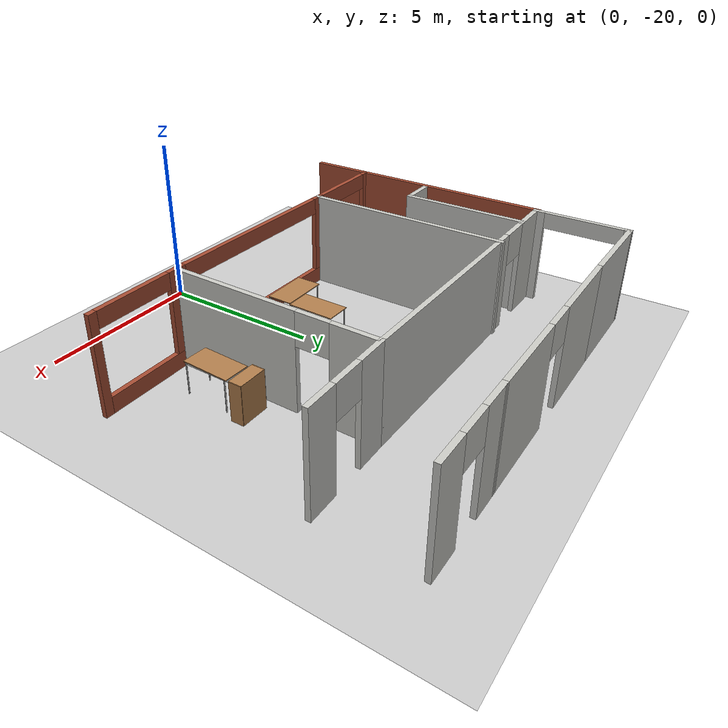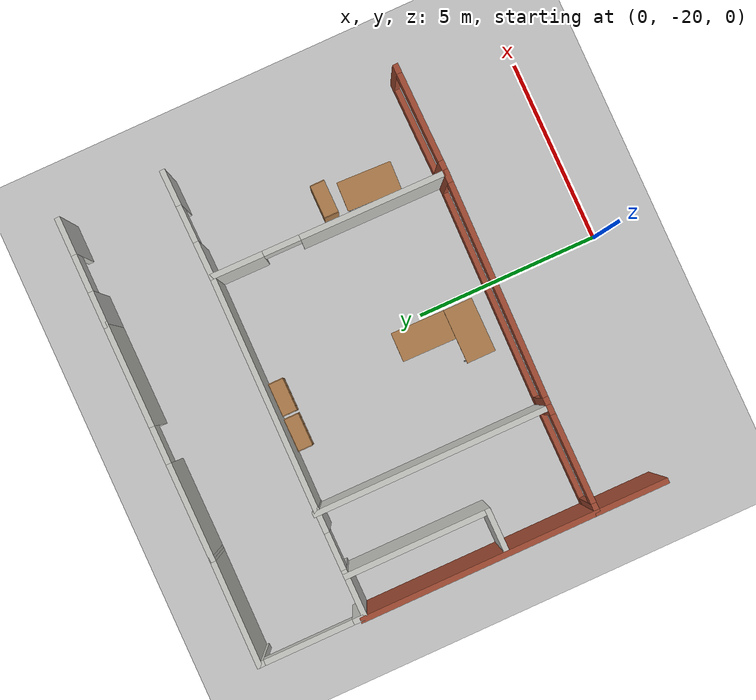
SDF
<sdf version="1.7">
 <world name="default">
  <model name="ground_plane">
   <static>1</static>
   <link name="link">
    <collision name="collision">
     <geometry><plane><normal>0 0 1</normal><size>100 100</size></plane></geometry>
     <surface><friction><ode><mu>100</mu><mu2>50</mu2></ode></friction></surface>
    </collision>
    <visual name="visual">
     <cast_shadows>0</cast_shadows>
     <geometry><plane><normal>0 0 1</normal><size>100 100</size></plane></geometry>
     <material>
      <script><uri>file://media/materials/scripts/gazebo.material</uri><name>Gazebo/Grey</name></script>
     </material>
    </visual>
   </link>
  </model>
  <model name="laboratory_world">
   <pose>0.94037 -7.07852 0 0 -0 0</pose>
   <link name="Wall_10">
    <pose>3.44822 -0.5985 0 0 -0 0</pose>
    <visual name="Wall_10_Visual_0">
     <pose>-1.01282 0 1.5 0 -0 0</pose>
     <geometry><box><size>0.974364 0.15 3</size></box></geometry>
     <material>
      <script><uri>file://media/materials/scripts/gazebo.material</uri><name>Gazebo/CeilingTiled</name></script>
      <ambient>0.921569 0.807843 0.615686 1</ambient>
     </material>
     <meta><layer>0</layer></meta>
    </visual>
    <collision name="Wall_10_Collision_0">
     <geometry><box><size>0.974364 0.15 3</size></box></geometry>
     <pose>-1.01282 0 1.5 0 -0 0</pose>
    </collision>
    <visual name="Wall_10_Visual_1">
     <pose>0.987182 0 1.5 0 -0 0</pose>
     <geometry><box><size>1.02564 0.15 3</size></box></geometry>
     <material>
      <script><uri>file://media/materials/scripts/gazebo.material</uri><name>Gazebo/CeilingTiled</name></script>
      <ambient>0.921569 0.807843 0.615686 1</ambient>
     </material>
     <meta><layer>0</layer></meta>
    </visual>
    <collision name="Wall_10_Collision_1">
     <geometry><box><size>1.02564 0.15 3</size></box></geometry>
     <pose>0.987182 0 1.5 0 -0 0</pose>
    </collision>
    <visual name="Wall_10_Visual_2">
     <pose>-0.025636 0 2.5 0 -0 0</pose>
     <geometry><box><size>1 0.15 1</size></box></geometry>
     <material>
      <script><uri>file://media/materials/scripts/gazebo.material</uri><name>Gazebo/CeilingTiled</name></script>
      <ambient>0.921569 0.807843 0.615686 1</ambient>
     </material>
     <meta><layer>0</layer></meta>
    </visual>
    <collision name="Wall_10_Collision_2">
     <geometry><box><size>1 0.15 1</size></box></geometry>
     <pose>-0.025636 0 2.5 0 -0 0</pose>
    </collision>
   </link>
   <link name="Wall_100">
    <collision name="Wall_100_Collision">
     <geometry><box><size>6.5 0.15 3</size></box></geometry>
     <pose>0 0 1.5 0 -0 0</pose>
    </collision>
    <visual name="Wall_100_Visual">
     <pose>0 0 1.5 0 -0 0</pose>
     <geometry><box><size>6.5 0.15 3</size></box></geometry>
     <material>
      <script><uri>file://media/materials/scripts/gazebo.material</uri><name>Gazebo/CeilingTiled</name></script>
      <ambient>0.921569 0.807843 0.615686 1</ambient>
     </material>
     <meta><layer>0</layer></meta>
    </visual>
    <pose>-4.37378 -6.5765 0 0 -0 1.5708</pose>
   </link>
   <link name="Wall_104">
    <pose>-7.17678 -2.0295 0 0 -0 1.5708</pose>
    <visual name="Wall_104_Visual_0">
     <pose>-1.31184 0 1.5 0 -0 0</pose>
     <geometry><box><size>0.388331 0.15 3</size></box></geometry>
     <material>
      <script><uri>file://media/materials/scripts/gazebo.material</uri><name>Gazebo/CeilingTiled</name></script>
      <ambient>0.921569 0.807843 0.615686 1</ambient>
     </material>
     <meta><layer>0</layer></meta>
    </visual>
    <collision name="Wall_104_Collision_0">
     <geometry><box><size>0.388331 0.15 3</size></box></geometry>
     <pose>-1.31184 0 1.5 0 -0 0</pose>
    </collision>
    <visual name="Wall_104_Visual_1">
     <pose>1.39417 0 1.5 0 -0 0</pose>
     <geometry><box><size>0.223669 0.15 3</size></box></geometry>
     <material>
      <script><uri>file://media/materials/scripts/gazebo.material</uri><name>Gazebo/CeilingTiled</name></script>
      <ambient>0.921569 0.807843 0.615686 1</ambient>
     </material>
     <meta><layer>0</layer></meta>
    </visual>
    <collision name="Wall_104_Collision_1">
     <geometry><box><size>0.223669 0.15 3</size></box></geometry>
     <pose>1.39417 0 1.5 0 -0 0</pose>
    </collision>
    <visual name="Wall_104_Visual_2">
     <pose>0.082331 0 2.75 0 -0 0</pose>
     <geometry><box><size>2.4 0.15 0.5</size></box></geometry>
     <material>
      <script><uri>file://media/materials/scripts/gazebo.material</uri><name>Gazebo/CeilingTiled</name></script>
      <ambient>0.921569 0.807843 0.615686 1</ambient>
     </material>
     <meta><layer>0</layer></meta>
    </visual>
    <collision name="Wall_104_Collision_2">
     <geometry><box><size>2.4 0.15 0.5</size></box></geometry>
     <pose>0.082331 0 2.75 0 -0 0</pose>
    </collision>
   </link>
   <link name="Wall_106">
    <collision name="Wall_106_Collision">
     <geometry><box><size>1.2 0.15 3</size></box></geometry>
     <pose>0 0 1.5 0 -0 0</pose>
    </collision>
    <visual name="Wall_106_Visual">
     <pose>0 0 1.5 0 -0 0</pose>
     <geometry><box><size>1.2 0.15 3</size></box></geometry>
     <material>
      <script><uri>file://media/materials/scripts/gazebo.material</uri><name>Gazebo/CeilingTiled</name></script>
      <ambient>0.921569 0.807843 0.615686 1</ambient>
     </material>
     <meta><layer>0</layer></meta>
    </visual>
    <pose>-6.60478 -7.3105 0 0 -0 0</pose>
   </link>
   <link name="Wall_108">
    <collision name="Wall_108_Collision">
     <geometry><box><size>4 0.15 3</size></box></geometry>
     <pose>0 0 1.5 0 -0 0</pose>
    </collision>
    <visual name="Wall_108_Visual">
     <pose>0 0 1.5 0 -0 0</pose>
     <geometry><box><size>4 0.15 3</size></box></geometry>
     <material>
      <script><uri>file://media/materials/scripts/gazebo.material</uri><name>Gazebo/CeilingTiled</name></script>
      <ambient>0.921569 0.807843 0.615686 1</ambient>
     </material>
     <meta><layer>0</layer></meta>
    </visual>
    <pose>-6.07978 -5.3855 0 0 -0 1.5708</pose>
   </link>
   <link name="Wall_112">
    <pose>-5.79878 -9.7515 0 0 -0 3.14159</pose>
    <visual name="Wall_112_Visual_0">
     <pose>-1.36527 0 1.5 0 -0 0</pose>
     <geometry><box><size>0.269459 0.15 3</size></box></geometry>
     <material>
      <script><uri>file://media/materials/scripts/gazebo.material</uri><name>Gazebo/Bricks</name></script>
      <ambient>0.760784 0.662745 0.627451 1</ambient>
     </material>
     <meta><layer>0</layer></meta>
    </visual>
    <collision name="Wall_112_Collision_0">
     <geometry><box><size>0.269459 0.15 3</size></box></geometry>
     <pose>-1.36527 0 1.5 0 -0 0</pose>
    </collision>
    <visual name="Wall_112_Visual_1">
     <pose>0.134729 0 0.25 0 -0 0</pose>
     <geometry><box><size>2.73054 0.15 0.5</size></box></geometry>
     <material>
      <script><uri>file://media/materials/scripts/gazebo.material</uri><name>Gazebo/Bricks</name></script>
      <ambient>0.760784 0.662745 0.627451 1</ambient>
     </material>
     <meta><layer>0</layer></meta>
    </visual>
    <collision name="Wall_112_Collision_1">
     <geometry><box><size>2.73054 0.15 0.5</size></box></geometry>
     <pose>0.134729 0 0.25 0 -0 0</pose>
    </collision>
    <visual name="Wall_112_Visual_2">
     <pose>1.33473 0 1.75 0 -0 0</pose>
     <geometry><box><size>0.330541 0.15 2.5</size></box></geometry>
     <material>
      <script><uri>file://media/materials/scripts/gazebo.material</uri><name>Gazebo/Bricks</name></script>
      <ambient>0.760784 0.662745 0.627451 1</ambient>
     </material>
     <meta><layer>0</layer></meta>
    </visual>
    <collision name="Wall_112_Collision_2">
     <geometry><box><size>0.330541 0.15 2.5</size></box></geometry>
     <pose>1.33473 0 1.75 0 -0 0</pose>
    </collision>
    <visual name="Wall_112_Visual_3">
     <pose>-0.030541 0 2.75 0 -0 0</pose>
     <geometry><box><size>2.4 0.15 0.5</size></box></geometry>
     <material>
      <script><uri>file://media/materials/scripts/gazebo.material</uri><name>Gazebo/Bricks</name></script>
      <ambient>0.760784 0.662745 0.627451 1</ambient>
     </material>
     <meta><layer>0</layer></meta>
    </visual>
    <collision name="Wall_112_Collision_3">
     <geometry><box><size>2.4 0.15 0.5</size></box></geometry>
     <pose>-0.030541 0 2.75 0 -0 0</pose>
    </collision>
   </link>
   <link name="Wall_114">
    <collision name="Wall_114_Collision">
     <geometry><box><size>6.5 0.15 3</size></box></geometry>
     <pose>0 0 1.5 0 -0 0</pose>
    </collision>
    <visual name="Wall_114_Visual">
     <pose>0 0 1.5 0 -0 0</pose>
     <geometry><box><size>6.5 0.15 3</size></box></geometry>
     <material>
      <script><uri>file://media/materials/scripts/gazebo.material</uri><name>Gazebo/Bricks</name></script>
      <ambient>0.760784 0.662745 0.627451 1</ambient>
     </material>
     <meta><layer>0</layer></meta>
    </visual>
    <pose>-7.22378 -6.5765 0 0 -0 1.5708</pose>
   </link>
   <link name="Wall_118">
    <collision name="Wall_118_Collision">
     <geometry><box><size>2 0.15 3</size></box></geometry>
     <pose>0 0 1.5 0 -0 0</pose>
    </collision>
    <visual name="Wall_118_Visual">
     <pose>0 0 1.5 0 -0 0</pose>
     <geometry><box><size>2 0.15 3</size></box></geometry>
     <material>
      <script><uri>file://media/materials/scripts/gazebo.material</uri><name>Gazebo/Bricks</name></script>
      <ambient>0.760784 0.662745 0.627451 1</ambient>
     </material>
     <meta><layer>0</layer></meta>
    </visual>
    <pose>-7.22378 -10.6765 0 0 -0 -1.5708</pose>
   </link>
   <link name="Wall_38">
    <pose>3.44822 -3.4685 0 0 -0 -3.12756</pose>
    <visual name="Wall_38_Visual_0">
     <pose>-1.00981 0 1.5 0 -0 0</pose>
     <geometry><box><size>0.981532 0.15 3</size></box></geometry>
     <material>
      <script><uri>file://media/materials/scripts/gazebo.material</uri><name>Gazebo/CeilingTiled</name></script>
      <ambient>0.921569 0.807843 0.615686 1</ambient>
     </material>
     <meta><layer>0</layer></meta>
    </visual>
    <collision name="Wall_38_Collision_0">
     <geometry><box><size>0.981532 0.15 3</size></box></geometry>
     <pose>-1.00981 0 1.5 0 -0 0</pose>
    </collision>
    <visual name="Wall_38_Visual_1">
     <pose>0.990766 0 1.5 0 -0 0</pose>
     <geometry><box><size>1.01962 0.15 3</size></box></geometry>
     <material>
      <script><uri>file://media/materials/scripts/gazebo.material</uri><name>Gazebo/CeilingTiled</name></script>
      <ambient>0.921569 0.807843 0.615686 1</ambient>
     </material>
     <meta><layer>0</layer></meta>
    </visual>
    <collision name="Wall_38_Collision_1">
     <geometry><box><size>1.01962 0.15 3</size></box></geometry>
     <pose>0.990766 0 1.5 0 -0 0</pose>
    </collision>
    <visual name="Wall_38_Visual_2">
     <pose>-0.019042 0 2.5 0 -0 0</pose>
     <geometry><box><size>1 0.15 1</size></box></geometry>
     <material>
      <script><uri>file://media/materials/scripts/gazebo.material</uri><name>Gazebo/CeilingTiled</name></script>
      <ambient>0.921569 0.807843 0.615686 1</ambient>
     </material>
     <meta><layer>0</layer></meta>
    </visual>
    <collision name="Wall_38_Collision_2">
     <geometry><box><size>1 0.15 1</size></box></geometry>
     <pose>-0.019042 0 2.5 0 -0 0</pose>
    </collision>
   </link>
   <link name="Wall_4">
    <collision name="Wall_4_Collision">
     <geometry><box><size>3 0.15 3</size></box></geometry>
     <pose>0 0 1.5 0 -0 0</pose>
    </collision>
    <visual name="Wall_4_Visual">
     <pose>0 0 1.5 0 -0 0</pose>
     <geometry><box><size>3 0.15 3</size></box></geometry>
     <material>
      <script><uri>file://media/materials/scripts/gazebo.material</uri><name>Gazebo/CeilingTiled</name></script>
      <ambient>0.921569 0.807843 0.615686 1</ambient>
     </material>
     <meta><layer>0</layer></meta>
    </visual>
    <pose>-5.75178 -0.607 0 0 -0 -0.005965</pose>
   </link>
   <link name="Wall_49">
    <pose>1.99972 -6.6635 0 0 -0 -1.5782</pose>
    <visual name="Wall_49_Visual_0">
     <pose>-2.52256 0 1.5 0 -0 0</pose>
     <geometry><box><size>1.45489 0.15 3</size></box></geometry>
     <material>
      <script><uri>file://media/materials/scripts/gazebo.material</uri><name>Gazebo/CeilingTiled</name></script>
      <ambient>0.921569 0.807843 0.615686 1</ambient>
     </material>
     <meta><layer>0</layer></meta>
    </visual>
    <collision name="Wall_49_Collision_0">
     <geometry><box><size>1.45489 0.15 3</size></box></geometry>
     <pose>-2.52256 0 1.5 0 -0 0</pose>
    </collision>
    <visual name="Wall_49_Visual_1">
     <pose>1.22744 0 1.5 0 -0 0</pose>
     <geometry><box><size>4.04511 0.15 3</size></box></geometry>
     <material>
      <script><uri>file://media/materials/scripts/gazebo.material</uri><name>Gazebo/CeilingTiled</name></script>
      <ambient>0.921569 0.807843 0.615686 1</ambient>
     </material>
     <meta><layer>0</layer></meta>
    </visual>
    <collision name="Wall_49_Collision_1">
     <geometry><box><size>4.04511 0.15 3</size></box></geometry>
     <pose>1.22744 0 1.5 0 -0 0</pose>
    </collision>
    <visual name="Wall_49_Visual_2">
     <pose>-1.29511 0 2.5 0 -0 0</pose>
     <geometry><box><size>1 0.15 1</size></box></geometry>
     <material>
      <script><uri>file://media/materials/scripts/gazebo.material</uri><name>Gazebo/CeilingTiled</name></script>
      <ambient>0.921569 0.807843 0.615686 1</ambient>
     </material>
     <meta><layer>0</layer></meta>
    </visual>
    <collision name="Wall_49_Collision_2">
     <geometry><box><size>1 0.15 1</size></box></geometry>
     <pose>-1.29511 0 2.5 0 -0 0</pose>
    </collision>
   </link>
   <link name="Wall_52">
    <pose>3.42472 -9.8185 0 0 -0 -3.12779</pose>
    <visual name="Wall_52_Visual_0">
     <pose>-1.39736 0 1.5 0 -0 0</pose>
     <geometry><box><size>0.252182 0.15 3</size></box></geometry>
     <material>
      <script><uri>file://media/materials/scripts/gazebo.material</uri><name>Gazebo/Bricks</name></script>
      <ambient>0.921569 0.807843 0.615686 1</ambient>
     </material>
     <meta><layer>0</layer></meta>
    </visual>
    <collision name="Wall_52_Collision_0">
     <geometry><box><size>0.252182 0.15 3</size></box></geometry>
     <pose>-1.39736 0 1.5 0 -0 0</pose>
    </collision>
    <visual name="Wall_52_Visual_1">
     <pose>0.126091 0 0.25 0 -0 0</pose>
     <geometry><box><size>2.79472 0.15 0.5</size></box></geometry>
     <material>
      <script><uri>file://media/materials/scripts/gazebo.material</uri><name>Gazebo/Bricks</name></script>
      <ambient>0.921569 0.807843 0.615686 1</ambient>
     </material>
     <meta><layer>0</layer></meta>
    </visual>
    <collision name="Wall_52_Collision_1">
     <geometry><box><size>2.79472 0.15 0.5</size></box></geometry>
     <pose>0.126091 0 0.25 0 -0 0</pose>
    </collision>
    <visual name="Wall_52_Visual_2">
     <pose>1.32609 0 1.75 0 -0 0</pose>
     <geometry><box><size>0.394716 0.15 2.5</size></box></geometry>
     <material>
      <script><uri>file://media/materials/scripts/gazebo.material</uri><name>Gazebo/Bricks</name></script>
      <ambient>0.921569 0.807843 0.615686 1</ambient>
     </material>
     <meta><layer>0</layer></meta>
    </visual>
    <collision name="Wall_52_Collision_2">
     <geometry><box><size>0.394716 0.15 2.5</size></box></geometry>
     <pose>1.32609 0 1.75 0 -0 0</pose>
    </collision>
    <visual name="Wall_52_Visual_3">
     <pose>-0.071267 0 2.75 0 -0 0</pose>
     <geometry><box><size>2.4 0.15 0.5</size></box></geometry>
     <material>
      <script><uri>file://media/materials/scripts/gazebo.material</uri><name>Gazebo/Bricks</name></script>
      <ambient>0.921569 0.807843 0.615686 1</ambient>
     </material>
     <meta><layer>0</layer></meta>
    </visual>
    <collision name="Wall_52_Collision_3">
     <geometry><box><size>2.4 0.15 0.5</size></box></geometry>
     <pose>-0.071267 0 2.75 0 -0 0</pose>
    </collision>
   </link>
   <link name="Wall_57">
    <collision name="Wall_57_Collision">
     <geometry><box><size>6.5 0.15 3</size></box></geometry>
     <pose>0 0 1.5 0 -0 0</pose>
    </collision>
    <visual name="Wall_57_Visual">
     <pose>0 0 1.5 0 -0 0</pose>
     <geometry><box><size>6.5 0.15 3</size></box></geometry>
     <material>
      <script><uri>file://media/materials/scripts/gazebo.material</uri><name>Gazebo/CeilingTiled</name></script>
      <ambient>0.921569 0.807843 0.615686 1</ambient>
     </material>
     <meta><layer>0</layer></meta>
    </visual>
    <pose>-1.15178 -3.4685 0 0 -0 -0.006299</pose>
   </link>
   <link name="Wall_7">
    <pose>-1.15178 -0.607 0 0 -0 0.002677</pose>
    <visual name="Wall_7_Visual_0">
     <pose>-1.92269 0 1.5 0 -0 0</pose>
     <geometry><box><size>2.6547 0.15 3</size></box></geometry>
     <material>
      <script><uri>file://media/materials/scripts/gazebo.material</uri><name>Gazebo/CeilingTiled</name></script>
      <ambient>0.921569 0.807843 0.615686 1</ambient>
     </material>
     <meta><layer>0</layer></meta>
    </visual>
    <collision name="Wall_7_Collision_0">
     <geometry><box><size>2.6547 0.15 3</size></box></geometry>
     <pose>-1.92269 0 1.5 0 -0 0</pose>
    </collision>
    <visual name="Wall_7_Visual_1">
     <pose>1.82735 0 1.5 0 -0 0</pose>
     <geometry><box><size>2.84537 0.15 3</size></box></geometry>
     <material>
      <script><uri>file://media/materials/scripts/gazebo.material</uri><name>Gazebo/CeilingTiled</name></script>
      <ambient>0.921569 0.807843 0.615686 1</ambient>
     </material>
     <meta><layer>0</layer></meta>
    </visual>
    <collision name="Wall_7_Collision_1">
     <geometry><box><size>2.84537 0.15 3</size></box></geometry>
     <pose>1.82735 0 1.5 0 -0 0</pose>
    </collision>
    <visual name="Wall_7_Visual_2">
     <pose>-0.095338 0 2.5 0 -0 0</pose>
     <geometry><box><size>1 0.15 1</size></box></geometry>
     <material>
      <script><uri>file://media/materials/scripts/gazebo.material</uri><name>Gazebo/CeilingTiled</name></script>
      <ambient>0.921569 0.807843 0.615686 1</ambient>
     </material>
     <meta><layer>0</layer></meta>
    </visual>
    <collision name="Wall_7_Collision_2">
     <geometry><box><size>1 0.15 1</size></box></geometry>
     <pose>-0.095338 0 2.5 0 -0 0</pose>
    </collision>
   </link>
   <link name="Wall_80">
    <pose>-5.75178 -3.4605 0 0 -0 0</pose>
    <visual name="Wall_80_Visual_0">
     <pose>-0.83004 0 1.5 0 -0 0</pose>
     <geometry><box><size>1.33992 0.15 3</size></box></geometry>
     <material>
      <script><uri>file://media/materials/scripts/gazebo.material</uri><name>Gazebo/CeilingTiled</name></script>
      <ambient>0.921569 0.807843 0.615686 1</ambient>
     </material>
     <meta><layer>0</layer></meta>
    </visual>
    <collision name="Wall_80_Collision_0">
     <geometry><box><size>1.33992 0.15 3</size></box></geometry>
     <pose>-0.83004 0 1.5 0 -0 0</pose>
    </collision>
    <visual name="Wall_80_Visual_1">
     <pose>1.16996 0 1.5 0 -0 0</pose>
     <geometry><box><size>0.660079 0.15 3</size></box></geometry>
     <material>
      <script><uri>file://media/materials/scripts/gazebo.material</uri><name>Gazebo/CeilingTiled</name></script>
      <ambient>0.921569 0.807843 0.615686 1</ambient>
     </material>
     <meta><layer>0</layer></meta>
    </visual>
    <collision name="Wall_80_Collision_1">
     <geometry><box><size>0.660079 0.15 3</size></box></geometry>
     <pose>1.16996 0 1.5 0 -0 0</pose>
    </collision>
    <visual name="Wall_80_Visual_2">
     <pose>0.339921 0 2.5 0 -0 0</pose>
     <geometry><box><size>1 0.15 1</size></box></geometry>
     <material>
      <script><uri>file://media/materials/scripts/gazebo.material</uri><name>Gazebo/CeilingTiled</name></script>
      <ambient>0.921569 0.807843 0.615686 1</ambient>
     </material>
     <meta><layer>0</layer></meta>
    </visual>
    <collision name="Wall_80_Collision_2">
     <geometry><box><size>1 0.15 1</size></box></geometry>
     <pose>0.339921 0 2.5 0 -0 0</pose>
    </collision>
   </link>
   <link name="Wall_98">
    <pose>-1.19878 -9.795 0 0 -0 3.12789</pose>
    <visual name="Wall_98_Visual_0">
     <pose>-3.07566 0 1.5 0 -0 0</pose>
     <geometry><box><size>0.348671 0.15 3</size></box></geometry>
     <material>
      <script><uri>file://media/materials/scripts/gazebo.material</uri><name>Gazebo/Bricks</name></script>
      <ambient>0.760784 0.662745 0.627451 1</ambient>
     </material>
     <meta><layer>0</layer></meta>
    </visual>
    <collision name="Wall_98_Collision_0">
     <geometry><box><size>0.348671 0.15 3</size></box></geometry>
     <pose>-3.07566 0 1.5 0 -0 0</pose>
    </collision>
    <visual name="Wall_98_Visual_1">
     <pose>0.174336 0 0.25 0 -0 0</pose>
     <geometry><box><size>6.15133 0.15 0.5</size></box></geometry>
     <material>
      <script><uri>file://media/materials/scripts/gazebo.material</uri><name>Gazebo/Bricks</name></script>
      <ambient>0.760784 0.662745 0.627451 1</ambient>
     </material>
     <meta><layer>0</layer></meta>
    </visual>
    <collision name="Wall_98_Collision_1">
     <geometry><box><size>6.15133 0.15 0.5</size></box></geometry>
     <pose>0.174336 0 0.25 0 -0 0</pose>
    </collision>
    <visual name="Wall_98_Visual_2">
     <pose>3.07434 0 1.75 0 -0 0</pose>
     <geometry><box><size>0.351329 0.15 2.5</size></box></geometry>
     <material>
      <script><uri>file://media/materials/scripts/gazebo.material</uri><name>Gazebo/Bricks</name></script>
      <ambient>0.760784 0.662745 0.627451 1</ambient>
     </material>
     <meta><layer>0</layer></meta>
    </visual>
    <collision name="Wall_98_Collision_2">
     <geometry><box><size>0.351329 0.15 2.5</size></box></geometry>
     <pose>3.07434 0 1.75 0 -0 0</pose>
    </collision>
    <visual name="Wall_98_Visual_3">
     <pose>-0.001329 0 2.75 0 -0 0</pose>
     <geometry><box><size>5.8 0.15 0.5</size></box></geometry>
     <material>
      <script><uri>file://media/materials/scripts/gazebo.material</uri><name>Gazebo/Bricks</name></script>
      <ambient>0.760784 0.662745 0.627451 1</ambient>
     </material>
     <meta><layer>0</layer></meta>
    </visual>
    <collision name="Wall_98_Collision_3">
     <geometry><box><size>5.8 0.15 0.5</size></box></geometry>
     <pose>-0.001329 0 2.75 0 -0 0</pose>
    </collision>
   </link>
   <static>1</static>
  </model>
  <model name="bookshelf_14">
   <static>1</static>
   <link name="link">
    <inertial><mass>1</mass></inertial>
    <collision name="back">
     <pose>0 0.005 0.6 0 -0 0</pose>
     <geometry><box><size>0.9 0.01 1.2</size></box></geometry>
    </collision>
    <visual name="visual1">
     <pose>0 0.005 0.6 0 -0 0</pose>
     <geometry><box><size>0.9 0.01 1.2</size></box></geometry>
     <material>
      <script><uri>file://media/materials/scripts/gazebo.material</uri><name>Gazebo/Wood</name></script>
     </material>
    </visual>
    <collision name="left_side">
     <pose>0.45 -0.195 0.6 0 -0 0</pose>
     <geometry><box><size>0.02 0.4 1.2</size></box></geometry>
    </collision>
    <visual name="visual2">
     <pose>0.45 -0.195 0.6 0 -0 0</pose>
     <geometry><box><size>0.02 0.4 1.2</size></box></geometry>
     <material>
      <script><uri>file://media/materials/scripts/gazebo.material</uri><name>Gazebo/Wood</name></script>
     </material>
    </visual>
    <collision name="right_side">
     <pose>-0.45 -0.195 0.6 0 -0 0</pose>
     <geometry><box><size>0.02 0.4 1.2</size></box></geometry>
    </collision>
    <visual name="visual3">
     <pose>-0.45 -0.195 0.6 0 -0 0</pose>
     <geometry><box><size>0.02 0.4 1.2</size></box></geometry>
     <material>
      <script><uri>file://media/materials/scripts/gazebo.material</uri><name>Gazebo/Wood</name></script>
     </material>
    </visual>
    <collision name="bottom">
     <pose>0 -0.195 0.03 0 -0 0</pose>
     <geometry><box><size>0.88 0.4 0.06</size></box></geometry>
    </collision>
    <visual name="visual4">
     <pose>0 -0.195 0.03 0 -0 0</pose>
     <geometry><box><size>0.88 0.4 0.06</size></box></geometry>
     <material>
      <script><uri>file://media/materials/scripts/gazebo.material</uri><name>Gazebo/Wood</name></script>
     </material>
    </visual>
    <collision name="top">
     <pose>0 -0.195 1.19 0 -0 0</pose>
     <geometry><box><size>0.88 0.4 0.02</size></box></geometry>
    </collision>
    <visual name="visual5">
     <pose>0 -0.195 1.19 0 -0 0</pose>
     <geometry><box><size>0.88 0.4 0.02</size></box></geometry>
     <material>
      <script><uri>file://media/materials/scripts/gazebo.material</uri><name>Gazebo/Wood</name></script>
     </material>
    </visual>
    <collision name="low_shelf">
     <pose>0 -0.195 0.43 0 -0 0</pose>
     <geometry><box><size>0.88 0.4 0.02</size></box></geometry>
    </collision>
    <visual name="visual6">
     <pose>0 -0.195 0.43 0 -0 0</pose>
     <geometry><box><size>0.88 0.4 0.02</size></box></geometry>
     <material>
      <script><uri>file://media/materials/scripts/gazebo.material</uri><name>Gazebo/Wood</name></script>
     </material>
    </visual>
    <collision name="high_shelf">
     <pose>0 -0.195 0.8 0 -0 0</pose>
     <geometry><box><size>0.88 0.4 0.02</size></box></geometry>
    </collision>
    <visual name="visual7">
     <pose>0 -0.195 0.8 0 -0 0</pose>
     <geometry><box><size>0.88 0.4 0.02</size></box></geometry>
     <material>
      <script><uri>file://media/materials/scripts/gazebo.material</uri><name>Gazebo/Wood</name></script>
     </material>
    </visual>
   </link>
   <pose>3.7455 -13.7393 0 0 -0 0</pose>
  </model>
  <model name="bookshelf_15">
   <static>1</static>
   <link name="link">
    <inertial><mass>1</mass></inertial>
    <collision name="back">
     <pose>0 0.005 0.6 0 -0 0</pose>
     <geometry><box><size>0.9 0.01 1.2</size></box></geometry>
    </collision>
    <visual name="visual1">
     <pose>0 0.005 0.6 0 -0 0</pose>
     <geometry><box><size>0.9 0.01 1.2</size></box></geometry>
     <material>
      <script><uri>file://media/materials/scripts/gazebo.material</uri><name>Gazebo/Wood</name></script>
     </material>
    </visual>
    <collision name="left_side">
     <pose>0.45 -0.195 0.6 0 -0 0</pose>
     <geometry><box><size>0.02 0.4 1.2</size></box></geometry>
    </collision>
    <visual name="visual2">
     <pose>0.45 -0.195 0.6 0 -0 0</pose>
     <geometry><box><size>0.02 0.4 1.2</size></box></geometry>
     <material>
      <script><uri>file://media/materials/scripts/gazebo.material</uri><name>Gazebo/Wood</name></script>
     </material>
    </visual>
    <collision name="right_side">
     <pose>-0.45 -0.195 0.6 0 -0 0</pose>
     <geometry><box><size>0.02 0.4 1.2</size></box></geometry>
    </collision>
    <visual name="visual3">
     <pose>-0.45 -0.195 0.6 0 -0 0</pose>
     <geometry><box><size>0.02 0.4 1.2</size></box></geometry>
     <material>
      <script><uri>file://media/materials/scripts/gazebo.material</uri><name>Gazebo/Wood</name></script>
     </material>
    </visual>
    <collision name="bottom">
     <pose>0 -0.195 0.03 0 -0 0</pose>
     <geometry><box><size>0.88 0.4 0.06</size></box></geometry>
    </collision>
    <visual name="visual4">
     <pose>0 -0.195 0.03 0 -0 0</pose>
     <geometry><box><size>0.88 0.4 0.06</size></box></geometry>
     <material>
      <script><uri>file://media/materials/scripts/gazebo.material</uri><name>Gazebo/Wood</name></script>
     </material>
    </visual>
    <collision name="top">
     <pose>0 -0.195 1.19 0 -0 0</pose>
     <geometry><box><size>0.88 0.4 0.02</size></box></geometry>
    </collision>
    <visual name="visual5">
     <pose>0 -0.195 1.19 0 -0 0</pose>
     <geometry><box><size>0.88 0.4 0.02</size></box></geometry>
     <material>
      <script><uri>file://media/materials/scripts/gazebo.material</uri><name>Gazebo/Wood</name></script>
     </material>
    </visual>
    <collision name="low_shelf">
     <pose>0 -0.195 0.43 0 -0 0</pose>
     <geometry><box><size>0.88 0.4 0.02</size></box></geometry>
    </collision>
    <visual name="visual6">
     <pose>0 -0.195 0.43 0 -0 0</pose>
     <geometry><box><size>0.88 0.4 0.02</size></box></geometry>
     <material>
      <script><uri>file://media/materials/scripts/gazebo.material</uri><name>Gazebo/Wood</name></script>
     </material>
    </visual>
    <collision name="high_shelf">
     <pose>0 -0.195 0.8 0 -0 0</pose>
     <geometry><box><size>0.88 0.4 0.02</size></box></geometry>
    </collision>
    <visual name="visual7">
     <pose>0 -0.195 0.8 0 -0 0</pose>
     <geometry><box><size>0.88 0.4 0.02</size></box></geometry>
     <material>
      <script><uri>file://media/materials/scripts/gazebo.material</uri><name>Gazebo/Wood</name></script>
     </material>
    </visual>
   </link>
   <pose>-1.43975 -10.6517 0 0 -0 0</pose>
  </model>
  <model name="bookshelf_16">
   <static>1</static>
   <link name="link">
    <inertial><mass>1</mass></inertial>
    <collision name="back">
     <pose>0 0.005 0.6 0 -0 0</pose>
     <geometry><box><size>0.9 0.01 1.2</size></box></geometry>
    </collision>
    <visual name="visual1">
     <pose>0 0.005 0.6 0 -0 0</pose>
     <geometry><box><size>0.9 0.01 1.2</size></box></geometry>
     <material>
      <script><uri>file://media/materials/scripts/gazebo.material</uri><name>Gazebo/Wood</name></script>
     </material>
    </visual>
    <collision name="left_side">
     <pose>0.45 -0.195 0.6 0 -0 0</pose>
     <geometry><box><size>0.02 0.4 1.2</size></box></geometry>
    </collision>
    <visual name="visual2">
     <pose>0.45 -0.195 0.6 0 -0 0</pose>
     <geometry><box><size>0.02 0.4 1.2</size></box></geometry>
     <material>
      <script><uri>file://media/materials/scripts/gazebo.material</uri><name>Gazebo/Wood</name></script>
     </material>
    </visual>
    <collision name="right_side">
     <pose>-0.45 -0.195 0.6 0 -0 0</pose>
     <geometry><box><size>0.02 0.4 1.2</size></box></geometry>
    </collision>
    <visual name="visual3">
     <pose>-0.45 -0.195 0.6 0 -0 0</pose>
     <geometry><box><size>0.02 0.4 1.2</size></box></geometry>
     <material>
      <script><uri>file://media/materials/scripts/gazebo.material</uri><name>Gazebo/Wood</name></script>
     </material>
    </visual>
    <collision name="bottom">
     <pose>0 -0.195 0.03 0 -0 0</pose>
     <geometry><box><size>0.88 0.4 0.06</size></box></geometry>
    </collision>
    <visual name="visual4">
     <pose>0 -0.195 0.03 0 -0 0</pose>
     <geometry><box><size>0.88 0.4 0.06</size></box></geometry>
     <material>
      <script><uri>file://media/materials/scripts/gazebo.material</uri><name>Gazebo/Wood</name></script>
     </material>
    </visual>
    <collision name="top">
     <pose>0 -0.195 1.19 0 -0 0</pose>
     <geometry><box><size>0.88 0.4 0.02</size></box></geometry>
    </collision>
    <visual name="visual5">
     <pose>0 -0.195 1.19 0 -0 0</pose>
     <geometry><box><size>0.88 0.4 0.02</size></box></geometry>
     <material>
      <script><uri>file://media/materials/scripts/gazebo.material</uri><name>Gazebo/Wood</name></script>
     </material>
    </visual>
    <collision name="low_shelf">
     <pose>0 -0.195 0.43 0 -0 0</pose>
     <geometry><box><size>0.88 0.4 0.02</size></box></geometry>
    </collision>
    <visual name="visual6">
     <pose>0 -0.195 0.43 0 -0 0</pose>
     <geometry><box><size>0.88 0.4 0.02</size></box></geometry>
     <material>
      <script><uri>file://media/materials/scripts/gazebo.material</uri><name>Gazebo/Wood</name></script>
     </material>
    </visual>
    <collision name="high_shelf">
     <pose>0 -0.195 0.8 0 -0 0</pose>
     <geometry><box><size>0.88 0.4 0.02</size></box></geometry>
    </collision>
    <visual name="visual7">
     <pose>0 -0.195 0.8 0 -0 0</pose>
     <geometry><box><size>0.88 0.4 0.02</size></box></geometry>
     <material>
      <script><uri>file://media/materials/scripts/gazebo.material</uri><name>Gazebo/Wood</name></script>
     </material>
    </visual>
   </link>
   <pose>-0.455835 -10.6606 0 0 -0 0</pose>
  </model>
  <model name="table_8">
   <static>1</static>
   <link name="link">
    <collision name="surface">
     <pose>0 0 1 0 -0 0</pose>
     <geometry><box><size>1.5 0.8 0.03</size></box></geometry>
     <surface><friction><ode><mu>0.6</mu><mu2>0.6</mu2></ode></friction></surface>
    </collision>
    <visual name="visual1">
     <pose>0 0 1 0 -0 0</pose>
     <geometry><box><size>1.5 0.8 0.03</size></box></geometry>
     <material>
      <script><uri>file://media/materials/scripts/gazebo.material</uri><name>Gazebo/Wood</name></script>
     </material>
    </visual>
    <collision name="front_left_leg">
     <pose>0.68 0.38 0.5 0 -0 0</pose>
     <geometry><cylinder><radius>0.02</radius><length>1</length></cylinder></geometry>
    </collision>
    <visual name="front_left_leg">
     <pose>0.68 0.38 0.5 0 -0 0</pose>
     <geometry><cylinder><radius>0.02</radius><length>1</length></cylinder></geometry>
     <material>
      <script><uri>file://media/materials/scripts/gazebo.material</uri><name>Gazebo/Grey</name></script>
     </material>
    </visual>
    <collision name="front_right_leg">
     <pose>0.68 -0.38 0.5 0 -0 0</pose>
     <geometry><cylinder><radius>0.02</radius><length>1</length></cylinder></geometry>
    </collision>
    <visual name="front_right_leg">
     <pose>0.68 -0.38 0.5 0 -0 0</pose>
     <geometry><cylinder><radius>0.02</radius><length>1</length></cylinder></geometry>
     <material>
      <script><uri>file://media/materials/scripts/gazebo.material</uri><name>Gazebo/Grey</name></script>
     </material>
    </visual>
    <collision name="back_right_leg">
     <pose>-0.68 -0.38 0.5 0 -0 0</pose>
     <geometry><cylinder><radius>0.02</radius><length>1</length></cylinder></geometry>
    </collision>
    <visual name="back_right_leg">
     <pose>-0.68 -0.38 0.5 0 -0 0</pose>
     <geometry><cylinder><radius>0.02</radius><length>1</length></cylinder></geometry>
     <material>
      <script><uri>file://media/materials/scripts/gazebo.material</uri><name>Gazebo/Grey</name></script>
     </material>
    </visual>
    <collision name="back_left_leg">
     <pose>-0.68 0.38 0.5 0 -0 0</pose>
     <geometry><cylinder><radius>0.02</radius><length>1</length></cylinder></geometry>
    </collision>
    <visual name="back_left_leg">
     <pose>-0.68 0.38 0.5 0 -0 0</pose>
     <geometry><cylinder><radius>0.02</radius><length>1</length></cylinder></geometry>
     <material>
      <script><uri>file://media/materials/scripts/gazebo.material</uri><name>Gazebo/Grey</name></script>
     </material>
    </visual>
   </link>
   <pose>-0.883291 -15.9484 -0.071312 0 -0 0</pose>
  </model>
  <model name="table_9">
   <static>1</static>
   <link name="link">
    <collision name="surface">
     <pose>0 0 1 0 -0 0</pose>
     <geometry><box><size>1.5 0.8 0.03</size></box></geometry>
     <surface><friction><ode><mu>0.6</mu><mu2>0.6</mu2></ode></friction></surface>
    </collision>
    <visual name="visual1">
     <pose>0 0 1 0 -0 0</pose>
     <geometry><box><size>1.5 0.8 0.03</size></box></geometry>
     <material>
      <script><uri>file://media/materials/scripts/gazebo.material</uri><name>Gazebo/Wood</name></script>
     </material>
    </visual>
    <collision name="front_left_leg">
     <pose>0.68 0.38 0.5 0 -0 0</pose>
     <geometry><cylinder><radius>0.02</radius><length>1</length></cylinder></geometry>
    </collision>
    <visual name="front_left_leg">
     <pose>0.68 0.38 0.5 0 -0 0</pose>
     <geometry><cylinder><radius>0.02</radius><length>1</length></cylinder></geometry>
     <material>
      <script><uri>file://media/materials/scripts/gazebo.material</uri><name>Gazebo/Grey</name></script>
     </material>
    </visual>
    <collision name="front_right_leg">
     <pose>0.68 -0.38 0.5 0 -0 0</pose>
     <geometry><cylinder><radius>0.02</radius><length>1</length></cylinder></geometry>
    </collision>
    <visual name="front_right_leg">
     <pose>0.68 -0.38 0.5 0 -0 0</pose>
     <geometry><cylinder><radius>0.02</radius><length>1</length></cylinder></geometry>
     <material>
      <script><uri>file://media/materials/scripts/gazebo.material</uri><name>Gazebo/Grey</name></script>
     </material>
    </visual>
    <collision name="back_right_leg">
     <pose>-0.68 -0.38 0.5 0 -0 0</pose>
     <geometry><cylinder><radius>0.02</radius><length>1</length></cylinder></geometry>
    </collision>
    <visual name="back_right_leg">
     <pose>-0.68 -0.38 0.5 0 -0 0</pose>
     <geometry><cylinder><radius>0.02</radius><length>1</length></cylinder></geometry>
     <material>
      <script><uri>file://media/materials/scripts/gazebo.material</uri><name>Gazebo/Grey</name></script>
     </material>
    </visual>
    <collision name="back_left_leg">
     <pose>-0.68 0.38 0.5 0 -0 0</pose>
     <geometry><cylinder><radius>0.02</radius><length>1</length></cylinder></geometry>
    </collision>
    <visual name="back_left_leg">
     <pose>-0.68 0.38 0.5 0 -0 0</pose>
     <geometry><cylinder><radius>0.02</radius><length>1</length></cylinder></geometry>
     <material>
      <script><uri>file://media/materials/scripts/gazebo.material</uri><name>Gazebo/Grey</name></script>
     </material>
    </visual>
   </link>
   <pose>-0.520517 -14.8142 -0.106276 0 0 -1.5829</pose>
  </model>
  <model name="table_10">
   <static>1</static>
   <link name="link">
    <collision name="surface">
     <pose>0 0 1 0 -0 0</pose>
     <geometry><box><size>1.5 0.8 0.03</size></box></geometry>
     <surface><friction><ode><mu>0.6</mu><mu2>0.6</mu2></ode></friction></surface>
    </collision>
    <visual name="visual1">
     <pose>0 0 1 0 -0 0</pose>
     <geometry><box><size>1.5 0.8 0.03</size></box></geometry>
     <material>
      <script><uri>file://media/materials/scripts/gazebo.material</uri><name>Gazebo/Wood</name></script>
     </material>
    </visual>
    <collision name="front_left_leg">
     <pose>0.68 0.38 0.5 0 -0 0</pose>
     <geometry><cylinder><radius>0.02</radius><length>1</length></cylinder></geometry>
    </collision>
    <visual name="front_left_leg">
     <pose>0.68 0.38 0.5 0 -0 0</pose>
     <geometry><cylinder><radius>0.02</radius><length>1</length></cylinder></geometry>
     <material>
      <script><uri>file://media/materials/scripts/gazebo.material</uri><name>Gazebo/Grey</name></script>
     </material>
    </visual>
    <collision name="front_right_leg">
     <pose>0.68 -0.38 0.5 0 -0 0</pose>
     <geometry><cylinder><radius>0.02</radius><length>1</length></cylinder></geometry>
    </collision>
    <visual name="front_right_leg">
     <pose>0.68 -0.38 0.5 0 -0 0</pose>
     <geometry><cylinder><radius>0.02</radius><length>1</length></cylinder></geometry>
     <material>
      <script><uri>file://media/materials/scripts/gazebo.material</uri><name>Gazebo/Grey</name></script>
     </material>
    </visual>
    <collision name="back_right_leg">
     <pose>-0.68 -0.38 0.5 0 -0 0</pose>
     <geometry><cylinder><radius>0.02</radius><length>1</length></cylinder></geometry>
    </collision>
    <visual name="back_right_leg">
     <pose>-0.68 -0.38 0.5 0 -0 0</pose>
     <geometry><cylinder><radius>0.02</radius><length>1</length></cylinder></geometry>
     <material>
      <script><uri>file://media/materials/scripts/gazebo.material</uri><name>Gazebo/Grey</name></script>
     </material>
    </visual>
    <collision name="back_left_leg">
     <pose>-0.68 0.38 0.5 0 -0 0</pose>
     <geometry><cylinder><radius>0.02</radius><length>1</length></cylinder></geometry>
    </collision>
    <visual name="back_left_leg">
     <pose>-0.68 0.38 0.5 0 -0 0</pose>
     <geometry><cylinder><radius>0.02</radius><length>1</length></cylinder></geometry>
     <material>
      <script><uri>file://media/materials/scripts/gazebo.material</uri><name>Gazebo/Grey</name></script>
     </material>
    </visual>
   </link>
   <pose>3.58361 -15.1337 0 0 -0 1.53165</pose>
  </model>
 </world>
</sdf>
